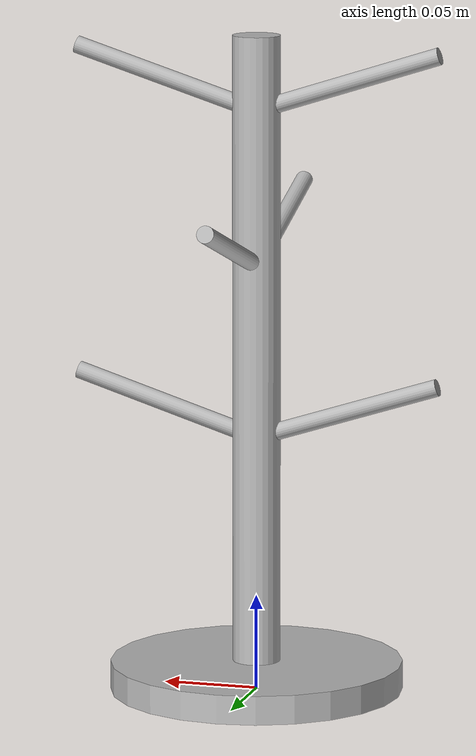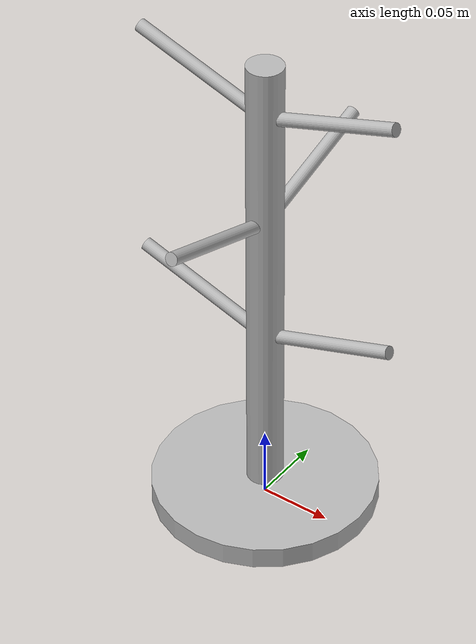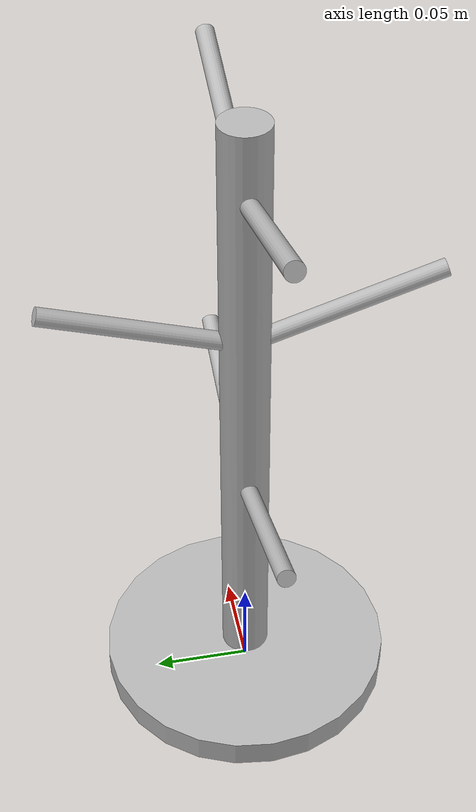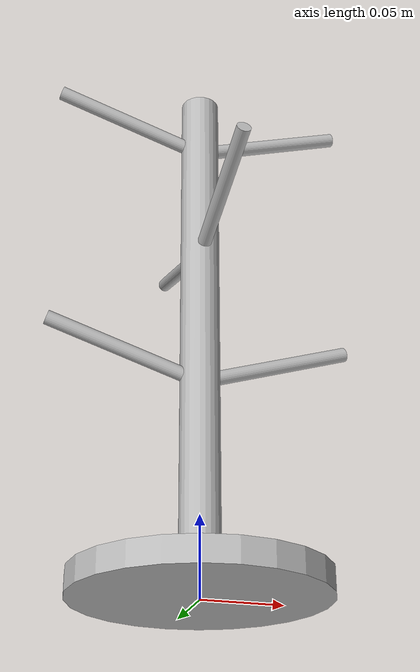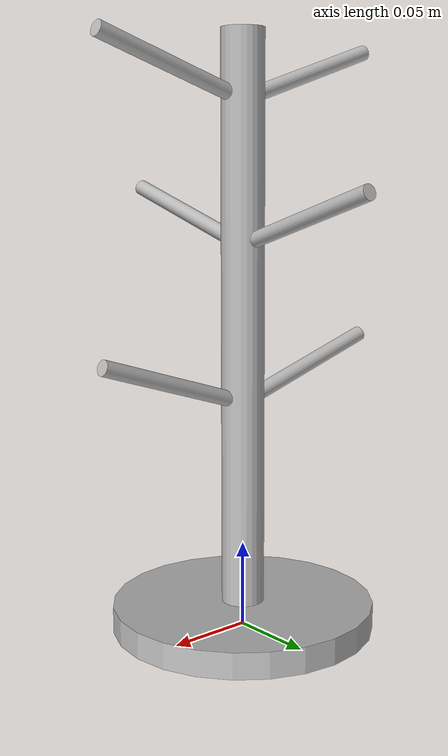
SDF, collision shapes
<?xml version="1.0" ?>
<!-- |    This document was autogenerated by xacro from dorhors_wood_mug_holder.sdf.xacro | -->
<!-- |    EDITING THIS FILE BY HAND IS NOT RECOMMENDED                                 | -->
<sdf version="1.7" xmlns:drake="drake.mit.edu">
  <model name="dorhors_wood_mug_holder">
    <link name="dorhors_wood_mug_holder">
      <pose>0 0 0 0 0 0</pose>
      <inertial>
        <pose>0 0 0.0838 0 0 0</pose>
        <mass>0.232</mass>
        <inertia>
          <ixx> 0.00298</ixx>
          <ixy> 0.00000</ixy>
          <ixz> 0.00000</ixz>
          <iyy> 0.00300</iyy>
          <iyz> 0.00000</iyz>
          <izz> 0.00046</izz>
        </inertia>
      </inertial>
      <visual name="dorhors_wood_mug_holder">
        <pose>0 0 0 0 0 0</pose>
        <geometry>
          <mesh>
            <uri>/data/kylehatch/lbm_eval/lbm_eval_models/kitchen_accessories/mug_holders/assets/dorhors_wood_mug_holder.gltf</uri>
            <scale>1.0 1.0 1.0</scale>
          </mesh>
        </geometry>
      </visual>
      <collision name="base_col">
        <pose>0.0 0.0 0.00763 0.0 0.0 0.0</pose>
        <geometry>
          <cylinder>
            <radius>0.077</radius>
            <length>0.01525</length>
          </cylinder>
        </geometry>
        <drake:proximity_properties>
          <drake:mu_dynamic>0.05</drake:mu_dynamic>
          <drake:mu_static>0.05</drake:mu_static>
          <drake:hydroelastic_modulus>1e8</drake:hydroelastic_modulus>
          <drake:hunt_crossley_dissipation>40</drake:hunt_crossley_dissipation>
          <drake:compliant_hydroelastic/>
          <drake:mesh_resolution_hint>0.02</drake:mesh_resolution_hint>
        </drake:proximity_properties>
      </collision>
      <collision name="bottom_left_branch_col">
        <pose>-0.05397 0.0 0.15239 0.0 -1.25926 0.0</pose>
        <geometry>
          <cylinder>
            <radius>0.00455</radius>
            <length>0.09009</length>
          </cylinder>
        </geometry>
        <drake:proximity_properties>
          <drake:mu_dynamic>0.05</drake:mu_dynamic>
          <drake:mu_static>0.05</drake:mu_static>
          <drake:hydroelastic_modulus>1e7</drake:hydroelastic_modulus>
          <drake:hunt_crossley_dissipation>0.25</drake:hunt_crossley_dissipation>
          <drake:mesh_resolution_hint>0.0025</drake:mesh_resolution_hint>
          <drake:compliant_hydroelastic/>
        </drake:proximity_properties>
      </collision>
      <collision name="bottom_right_branch_col">
        <pose>0.05397 0.0 0.15239 0.0 1.25926 0.0</pose>
        <geometry>
          <cylinder>
            <radius>0.00455</radius>
            <length>0.09009</length>
          </cylinder>
        </geometry>
        <drake:proximity_properties>
          <drake:mu_dynamic>0.05</drake:mu_dynamic>
          <drake:mu_static>0.05</drake:mu_static>
          <drake:hydroelastic_modulus>1e7</drake:hydroelastic_modulus>
          <drake:hunt_crossley_dissipation>0.25</drake:hunt_crossley_dissipation>
          <drake:mesh_resolution_hint>0.0025</drake:mesh_resolution_hint>
          <drake:compliant_hydroelastic/>
        </drake:proximity_properties>
      </collision>
      <collision name="mid_back_branch_col">
        <pose>-0.0 0.05397 0.24339 -0.0 1.25926 1.5708</pose>
        <geometry>
          <cylinder>
            <radius>0.00455</radius>
            <length>0.09009</length>
          </cylinder>
        </geometry>
        <drake:proximity_properties>
          <drake:mu_dynamic>0.05</drake:mu_dynamic>
          <drake:mu_static>0.05</drake:mu_static>
          <drake:hydroelastic_modulus>1e7</drake:hydroelastic_modulus>
          <drake:hunt_crossley_dissipation>0.25</drake:hunt_crossley_dissipation>
          <drake:mesh_resolution_hint>0.0025</drake:mesh_resolution_hint>
          <drake:compliant_hydroelastic/>
        </drake:proximity_properties>
      </collision>
      <collision name="mid_front_branch_col">
        <pose>-0.0 -0.05397 0.24339 0.0 1.25926 4.71239</pose>
        <geometry>
          <cylinder>
            <radius>0.00455</radius>
            <length>0.09009</length>
          </cylinder>
        </geometry>
        <drake:proximity_properties>
          <drake:mu_dynamic>0.05</drake:mu_dynamic>
          <drake:mu_static>0.05</drake:mu_static>
          <drake:hydroelastic_modulus>1e7</drake:hydroelastic_modulus>
          <drake:hunt_crossley_dissipation>0.25</drake:hunt_crossley_dissipation>
          <drake:mesh_resolution_hint>0.0025</drake:mesh_resolution_hint>
          <drake:compliant_hydroelastic/>
        </drake:proximity_properties>
      </collision>
      <collision name="top_left_branch_col">
        <pose>-0.05397 0.0 0.32439 0.0 -1.25926 0.0</pose>
        <geometry>
          <cylinder>
            <radius>0.00455</radius>
            <length>0.09009</length>
          </cylinder>
        </geometry>
        <drake:proximity_properties>
          <drake:mu_dynamic>0.05</drake:mu_dynamic>
          <drake:mu_static>0.05</drake:mu_static>
          <drake:hydroelastic_modulus>1e7</drake:hydroelastic_modulus>
          <drake:hunt_crossley_dissipation>0.25</drake:hunt_crossley_dissipation>
          <drake:mesh_resolution_hint>0.0025</drake:mesh_resolution_hint>
          <drake:compliant_hydroelastic/>
        </drake:proximity_properties>
      </collision>
      <collision name="top_right_branch_col">
        <pose>0.05397 -0.0 0.32439 0.0 1.25926 0.0</pose>
        <geometry>
          <cylinder>
            <radius>0.00455</radius>
            <length>0.09009</length>
          </cylinder>
        </geometry>
        <drake:proximity_properties>
          <drake:mu_dynamic>0.05</drake:mu_dynamic>
          <drake:mu_static>0.05</drake:mu_static>
          <drake:hydroelastic_modulus>1e7</drake:hydroelastic_modulus>
          <drake:hunt_crossley_dissipation>0.25</drake:hunt_crossley_dissipation>
          <drake:mesh_resolution_hint>0.0025</drake:mesh_resolution_hint>
          <drake:compliant_hydroelastic/>
        </drake:proximity_properties>
      </collision>
      <collision name="trunk_col">
        <pose>0.0 0.0 0.18063 0.0 0.0 0.0</pose>
        <geometry>
          <cylinder>
            <radius>0.0125</radius>
            <length>0.33075</length>
          </cylinder>
        </geometry>
        <drake:proximity_properties>
          <drake:mu_dynamic>0.1</drake:mu_dynamic>
          <drake:mu_static>0.1</drake:mu_static>
          <drake:compliant_hydroelastic/>
          <drake:hydroelastic_modulus>1.0e7</drake:hydroelastic_modulus>
          <drake:hunt_crossley_dissipation>0</drake:hunt_crossley_dissipation>
          <drake:mesh_resolution_hint>0.01</drake:mesh_resolution_hint>
        </drake:proximity_properties>
      </collision>
    </link>
    <frame name="origin">
      <pose relative_to="dorhors_wood_mug_holder">0 0 0 0 0 0</pose>
    </frame>
    <frame name="bottom_of_stand__z_up">
      <pose relative_to="dorhors_wood_mug_holder">0 0 0 0 0 0</pose>
    </frame>
    <frame name="bottom_left_branch_base">
      <pose relative_to="dorhors_wood_mug_holder">-0.0125 0.0 0.13923295 0.0 1.25926 3.14159</pose>
    </frame>
    <frame name="bottom_right_branch_base">
      <pose relative_to="dorhors_wood_mug_holder">0.0125 0.0 0.13923295 0.0 1.25926 0.0</pose>
    </frame>
    <frame name="mid_back_branch_base">
      <pose relative_to="dorhors_wood_mug_holder">-0.0 0.0125 0.23036585 -0.0 1.25926 1.5708</pose>
    </frame>
    <frame name="mid_front_branch_base">
      <pose relative_to="dorhors_wood_mug_holder">-0.0 -0.0125 0.23036585 0.0 1.25926 4.71239</pose>
    </frame>
    <frame name="top_left_branch_base">
      <pose relative_to="dorhors_wood_mug_holder">-0.0125 0.0 0.31148421 0.0 1.25926 3.14159</pose>
    </frame>
    <frame name="top_right_branch_base">
      <pose relative_to="dorhors_wood_mug_holder">0.0125 0.0 0.31148421 0.0 1.25926 0.0</pose>
    </frame>
    <frame name="at_rest_right_side_up">
      <pose relative_to="dorhors_wood_mug_holder">0 0 0 0 0 0</pose>
    </frame>
  </model>
</sdf>
